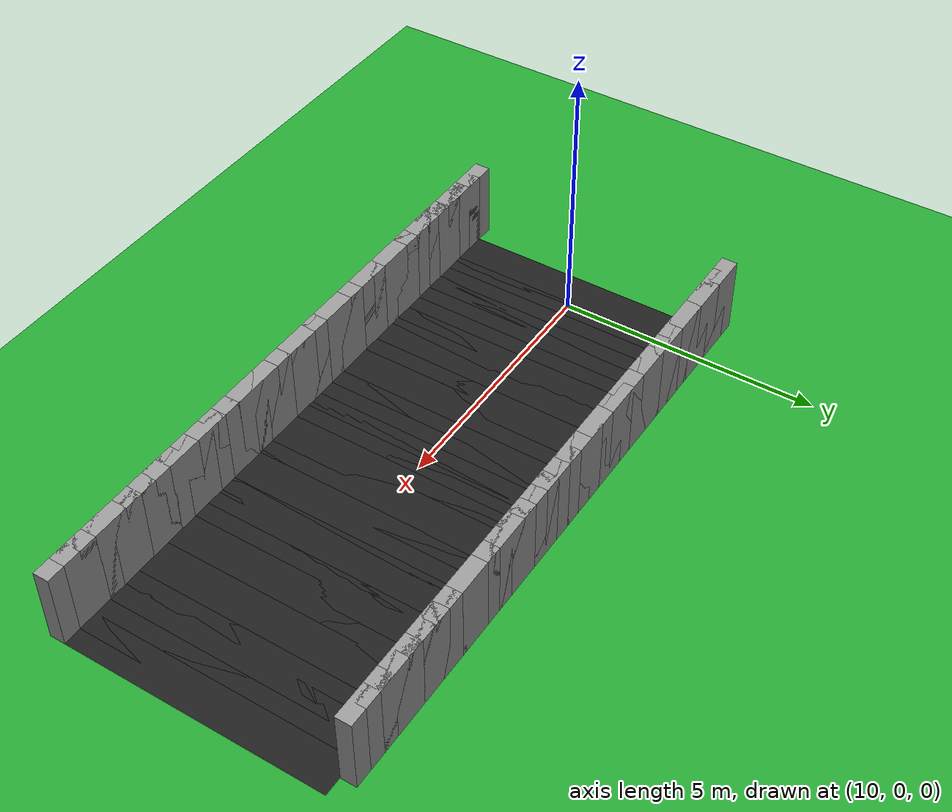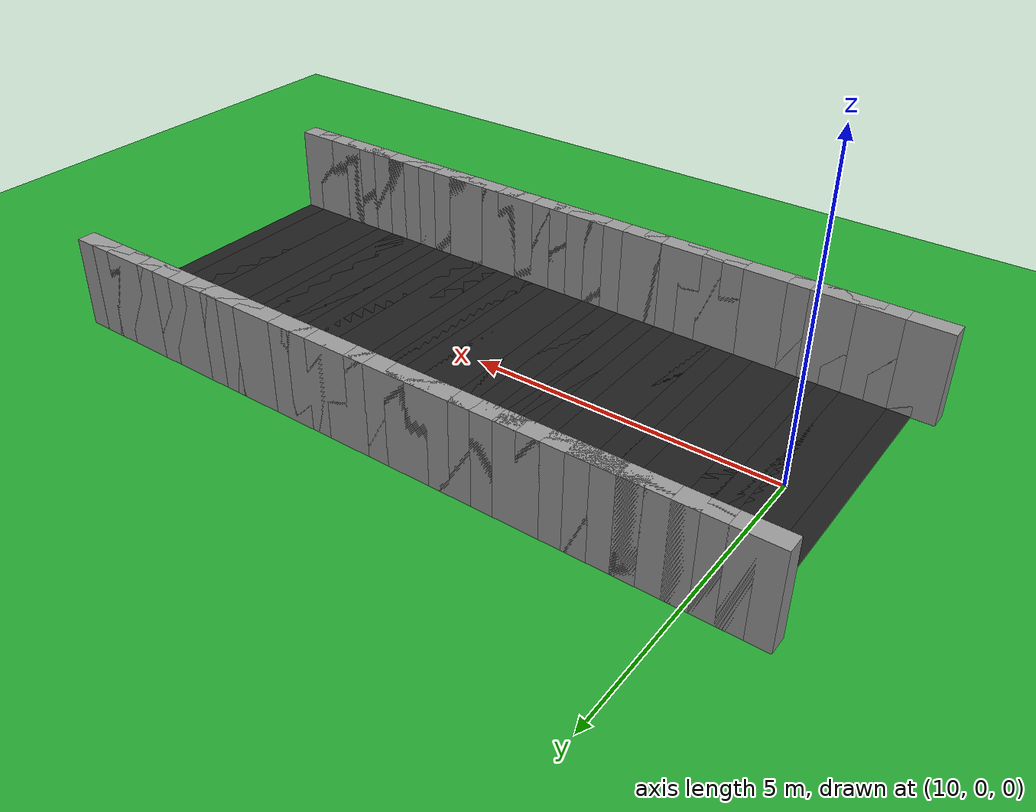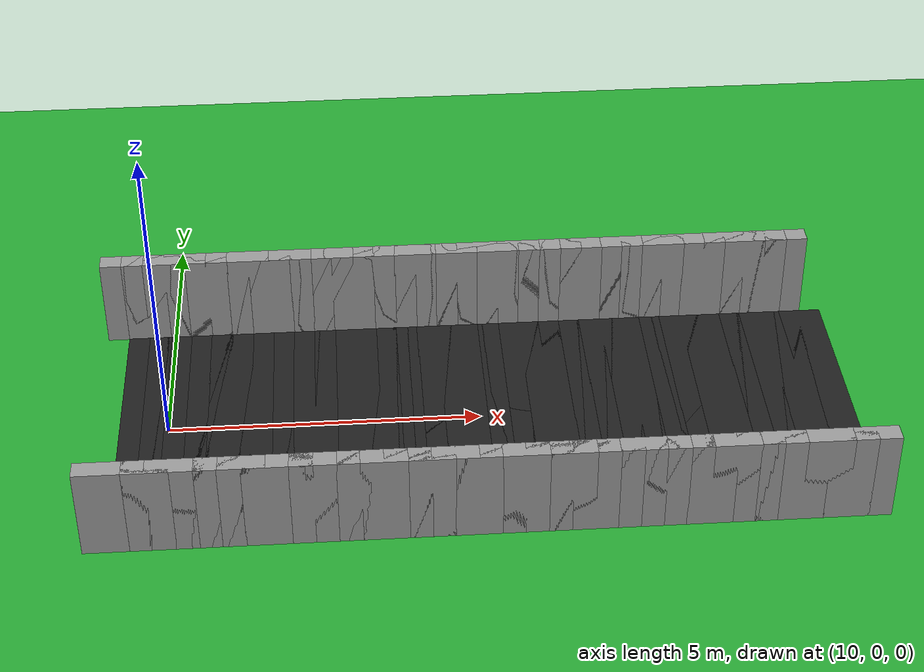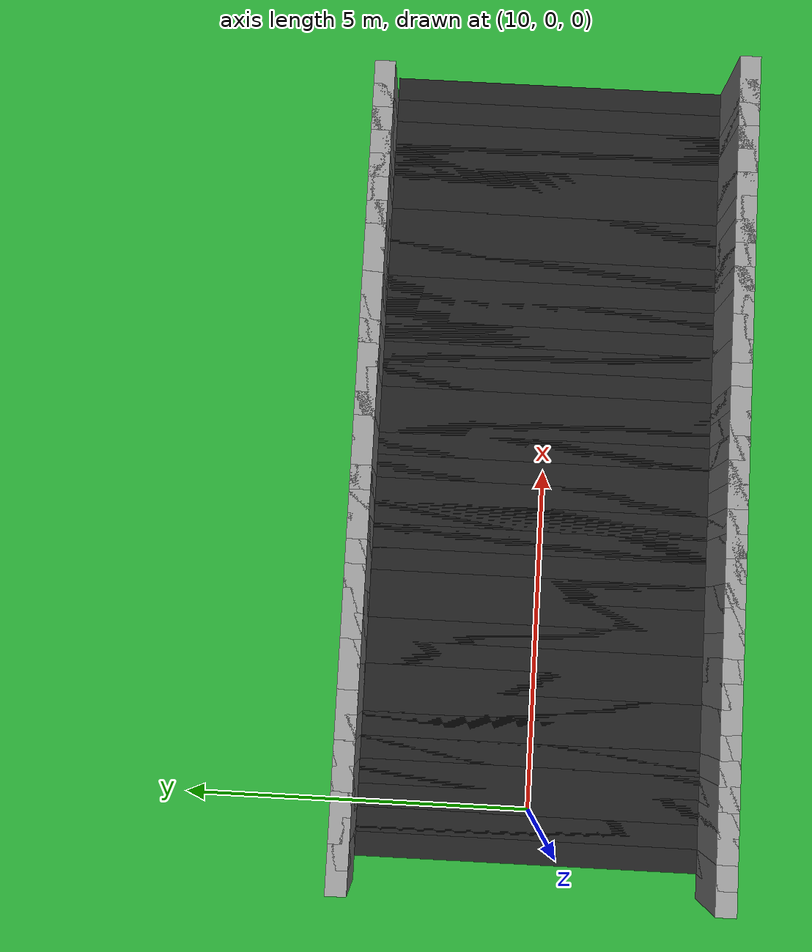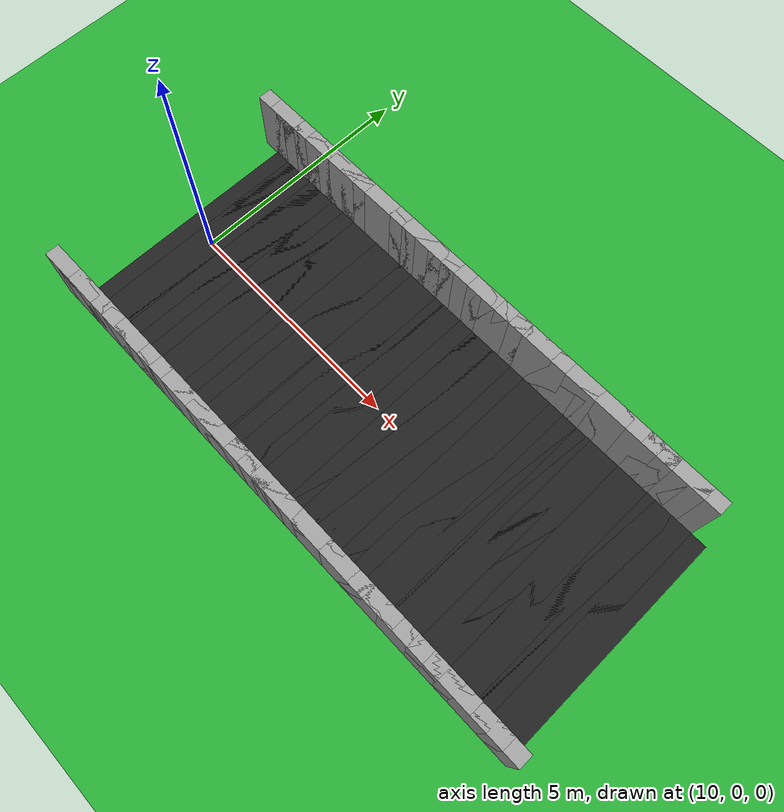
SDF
<sdf version="1.6">
 <world name="loop_stadium">
  <include><uri>model://sun</uri></include>
  <model name="ground_plane">
   <static>true</static>
   <link name="link">
    <collision name="collision">
     <surface><friction><ode><mu>100</mu><mu2>50</mu2></ode></friction></surface>
     <geometry><plane><normal>0 0 1</normal><size>120 120</size></plane></geometry>
    </collision>
    <visual name="visual">
     <geometry><plane><normal>0 0 1</normal><size>120 120</size></plane></geometry>
     <material>
      <script><uri>file://media/materials/scripts/gazebo.material</uri><name>Gazebo/Green</name></script>
     </material>
    </visual>
   </link>
  </model>
  <model name="curbL_26">
   <static>true</static>
   <pose>9.217 2.650 0.750 0 0 0.00000</pose>
   <link name="link">
    <collision name="collision"><geometry><box><size>0.708 0.300 1.500</size></box></geometry></collision>
    <visual name="visual">
     <geometry><box><size>0.708 0.300 1.500</size></box></geometry>
     <material>
      <script><uri>file://media/materials/scripts/gazebo.material</uri><name>Gazebo/Grey</name></script>
     </material>
    </visual>
   </link>
  </model>
  <model name="curbR_26">
   <static>true</static>
   <pose>9.217 -2.650 0.750 0 0 0.00000</pose>
   <link name="link">
    <collision name="collision"><geometry><box><size>0.708 0.300 1.500</size></box></geometry></collision>
    <visual name="visual">
     <geometry><box><size>0.708 0.300 1.500</size></box></geometry>
     <material>
      <script><uri>file://media/materials/scripts/gazebo.material</uri><name>Gazebo/Grey</name></script>
     </material>
    </visual>
   </link>
  </model>
  <model name="asphalt_27">
   <static>true</static>
   <pose>9.565 0.000 0.005 0 0 0.00000</pose>
   <link name="link">
    <visual name="visual">
     <geometry><box><size>0.708 5.000 0.010</size></box></geometry>
     <material>
      <script><uri>file://media/materials/scripts/gazebo.material</uri><name>Gazebo/Black</name></script>
     </material>
    </visual>
   </link>
  </model>
  <model name="curbL_27">
   <static>true</static>
   <pose>9.565 2.650 0.750 0 0 0.00000</pose>
   <link name="link">
    <collision name="collision"><geometry><box><size>0.708 0.300 1.500</size></box></geometry></collision>
    <visual name="visual">
     <geometry><box><size>0.708 0.300 1.500</size></box></geometry>
     <material>
      <script><uri>file://media/materials/scripts/gazebo.material</uri><name>Gazebo/Grey</name></script>
     </material>
    </visual>
   </link>
  </model>
  <model name="curbR_27">
   <static>true</static>
   <pose>9.565 -2.650 0.750 0 0 0.00000</pose>
   <link name="link">
    <collision name="collision"><geometry><box><size>0.708 0.300 1.500</size></box></geometry></collision>
    <visual name="visual">
     <geometry><box><size>0.708 0.300 1.500</size></box></geometry>
     <material>
      <script><uri>file://media/materials/scripts/gazebo.material</uri><name>Gazebo/Grey</name></script>
     </material>
    </visual>
   </link>
  </model>
  <model name="asphalt_28">
   <static>true</static>
   <pose>9.913 0.000 0.005 0 0 0.00000</pose>
   <link name="link">
    <visual name="visual">
     <geometry><box><size>0.708 5.000 0.010</size></box></geometry>
     <material>
      <script><uri>file://media/materials/scripts/gazebo.material</uri><name>Gazebo/Black</name></script>
     </material>
    </visual>
   </link>
  </model>
  <model name="curbL_28">
   <static>true</static>
   <pose>9.913 2.650 0.750 0 0 0.00000</pose>
   <link name="link">
    <collision name="collision"><geometry><box><size>0.708 0.300 1.500</size></box></geometry></collision>
    <visual name="visual">
     <geometry><box><size>0.708 0.300 1.500</size></box></geometry>
     <material>
      <script><uri>file://media/materials/scripts/gazebo.material</uri><name>Gazebo/Grey</name></script>
     </material>
    </visual>
   </link>
  </model>
  <model name="curbR_28">
   <static>true</static>
   <pose>9.913 -2.650 0.750 0 0 0.00000</pose>
   <link name="link">
    <collision name="collision"><geometry><box><size>0.708 0.300 1.500</size></box></geometry></collision>
    <visual name="visual">
     <geometry><box><size>0.708 0.300 1.500</size></box></geometry>
     <material>
      <script><uri>file://media/materials/scripts/gazebo.material</uri><name>Gazebo/Grey</name></script>
     </material>
    </visual>
   </link>
  </model>
  <model name="asphalt_29">
   <static>true</static>
   <pose>10.261 0.000 0.005 0 0 0.00000</pose>
   <link name="link">
    <visual name="visual">
     <geometry><box><size>0.708 5.000 0.010</size></box></geometry>
     <material>
      <script><uri>file://media/materials/scripts/gazebo.material</uri><name>Gazebo/Black</name></script>
     </material>
    </visual>
   </link>
  </model>
  <model name="curbL_29">
   <static>true</static>
   <pose>10.261 2.650 0.750 0 0 0.00000</pose>
   <link name="link">
    <collision name="collision"><geometry><box><size>0.708 0.300 1.500</size></box></geometry></collision>
    <visual name="visual">
     <geometry><box><size>0.708 0.300 1.500</size></box></geometry>
     <material>
      <script><uri>file://media/materials/scripts/gazebo.material</uri><name>Gazebo/Grey</name></script>
     </material>
    </visual>
   </link>
  </model>
  <model name="curbR_29">
   <static>true</static>
   <pose>10.261 -2.650 0.750 0 0 0.00000</pose>
   <link name="link">
    <collision name="collision"><geometry><box><size>0.708 0.300 1.500</size></box></geometry></collision>
    <visual name="visual">
     <geometry><box><size>0.708 0.300 1.500</size></box></geometry>
     <material>
      <script><uri>file://media/materials/scripts/gazebo.material</uri><name>Gazebo/Grey</name></script>
     </material>
    </visual>
   </link>
  </model>
  <model name="asphalt_30">
   <static>true</static>
   <pose>10.609 0.000 0.005 0 0 0.00000</pose>
   <link name="link">
    <visual name="visual">
     <geometry><box><size>0.708 5.000 0.010</size></box></geometry>
     <material>
      <script><uri>file://media/materials/scripts/gazebo.material</uri><name>Gazebo/Black</name></script>
     </material>
    </visual>
   </link>
  </model>
  <model name="curbL_30">
   <static>true</static>
   <pose>10.609 2.650 0.750 0 0 0.00000</pose>
   <link name="link">
    <collision name="collision"><geometry><box><size>0.708 0.300 1.500</size></box></geometry></collision>
    <visual name="visual">
     <geometry><box><size>0.708 0.300 1.500</size></box></geometry>
     <material>
      <script><uri>file://media/materials/scripts/gazebo.material</uri><name>Gazebo/Grey</name></script>
     </material>
    </visual>
   </link>
  </model>
  <model name="curbR_30">
   <static>true</static>
   <pose>10.609 -2.650 0.750 0 0 0.00000</pose>
   <link name="link">
    <collision name="collision"><geometry><box><size>0.708 0.300 1.500</size></box></geometry></collision>
    <visual name="visual">
     <geometry><box><size>0.708 0.300 1.500</size></box></geometry>
     <material>
      <script><uri>file://media/materials/scripts/gazebo.material</uri><name>Gazebo/Grey</name></script>
     </material>
    </visual>
   </link>
  </model>
  <model name="asphalt_31">
   <static>true</static>
   <pose>10.957 0.000 0.005 0 0 0.00000</pose>
   <link name="link">
    <visual name="visual">
     <geometry><box><size>0.708 5.000 0.010</size></box></geometry>
     <material>
      <script><uri>file://media/materials/scripts/gazebo.material</uri><name>Gazebo/Black</name></script>
     </material>
    </visual>
   </link>
  </model>
  <model name="curbL_31">
   <static>true</static>
   <pose>10.957 2.650 0.750 0 0 0.00000</pose>
   <link name="link">
    <collision name="collision"><geometry><box><size>0.708 0.300 1.500</size></box></geometry></collision>
    <visual name="visual">
     <geometry><box><size>0.708 0.300 1.500</size></box></geometry>
     <material>
      <script><uri>file://media/materials/scripts/gazebo.material</uri><name>Gazebo/Grey</name></script>
     </material>
    </visual>
   </link>
  </model>
  <model name="curbR_31">
   <static>true</static>
   <pose>10.957 -2.650 0.750 0 0 0.00000</pose>
   <link name="link">
    <collision name="collision"><geometry><box><size>0.708 0.300 1.500</size></box></geometry></collision>
    <visual name="visual">
     <geometry><box><size>0.708 0.300 1.500</size></box></geometry>
     <material>
      <script><uri>file://media/materials/scripts/gazebo.material</uri><name>Gazebo/Grey</name></script>
     </material>
    </visual>
   </link>
  </model>
  <model name="asphalt_32">
   <static>true</static>
   <pose>11.304 0.000 0.005 0 0 0.00000</pose>
   <link name="link">
    <visual name="visual">
     <geometry><box><size>0.708 5.000 0.010</size></box></geometry>
     <material>
      <script><uri>file://media/materials/scripts/gazebo.material</uri><name>Gazebo/Black</name></script>
     </material>
    </visual>
   </link>
  </model>
  <model name="curbL_32">
   <static>true</static>
   <pose>11.304 2.650 0.750 0 0 0.00000</pose>
   <link name="link">
    <collision name="collision"><geometry><box><size>0.708 0.300 1.500</size></box></geometry></collision>
    <visual name="visual">
     <geometry><box><size>0.708 0.300 1.500</size></box></geometry>
     <material>
      <script><uri>file://media/materials/scripts/gazebo.material</uri><name>Gazebo/Grey</name></script>
     </material>
    </visual>
   </link>
  </model>
  <model name="curbR_32">
   <static>true</static>
   <pose>11.304 -2.650 0.750 0 0 0.00000</pose>
   <link name="link">
    <collision name="collision"><geometry><box><size>0.708 0.300 1.500</size></box></geometry></collision>
    <visual name="visual">
     <geometry><box><size>0.708 0.300 1.500</size></box></geometry>
     <material>
      <script><uri>file://media/materials/scripts/gazebo.material</uri><name>Gazebo/Grey</name></script>
     </material>
    </visual>
   </link>
  </model>
  <model name="asphalt_33">
   <static>true</static>
   <pose>11.652 0.000 0.005 0 0 0.00000</pose>
   <link name="link">
    <visual name="visual">
     <geometry><box><size>0.708 5.000 0.010</size></box></geometry>
     <material>
      <script><uri>file://media/materials/scripts/gazebo.material</uri><name>Gazebo/Black</name></script>
     </material>
    </visual>
   </link>
  </model>
  <model name="curbL_33">
   <static>true</static>
   <pose>11.652 2.650 0.750 0 0 0.00000</pose>
   <link name="link">
    <collision name="collision"><geometry><box><size>0.708 0.300 1.500</size></box></geometry></collision>
    <visual name="visual">
     <geometry><box><size>0.708 0.300 1.500</size></box></geometry>
     <material>
      <script><uri>file://media/materials/scripts/gazebo.material</uri><name>Gazebo/Grey</name></script>
     </material>
    </visual>
   </link>
  </model>
  <model name="curbR_33">
   <static>true</static>
   <pose>11.652 -2.650 0.750 0 0 0.00000</pose>
   <link name="link">
    <collision name="collision"><geometry><box><size>0.708 0.300 1.500</size></box></geometry></collision>
    <visual name="visual">
     <geometry><box><size>0.708 0.300 1.500</size></box></geometry>
     <material>
      <script><uri>file://media/materials/scripts/gazebo.material</uri><name>Gazebo/Grey</name></script>
     </material>
    </visual>
   </link>
  </model>
  <model name="asphalt_34">
   <static>true</static>
   <pose>12.000 0.000 0.005 0 0 0.00000</pose>
   <link name="link">
    <visual name="visual">
     <geometry><box><size>0.708 5.000 0.010</size></box></geometry>
     <material>
      <script><uri>file://media/materials/scripts/gazebo.material</uri><name>Gazebo/Black</name></script>
     </material>
    </visual>
   </link>
  </model>
  <model name="curbL_34">
   <static>true</static>
   <pose>12.000 2.650 0.750 0 0 0.00000</pose>
   <link name="link">
    <collision name="collision"><geometry><box><size>0.708 0.300 1.500</size></box></geometry></collision>
    <visual name="visual">
     <geometry><box><size>0.708 0.300 1.500</size></box></geometry>
     <material>
      <script><uri>file://media/materials/scripts/gazebo.material</uri><name>Gazebo/Grey</name></script>
     </material>
    </visual>
   </link>
  </model>
  <model name="curbR_34">
   <static>true</static>
   <pose>12.000 -2.650 0.750 0 0 0.00000</pose>
   <link name="link">
    <collision name="collision"><geometry><box><size>0.708 0.300 1.500</size></box></geometry></collision>
    <visual name="visual">
     <geometry><box><size>0.708 0.300 1.500</size></box></geometry>
     <material>
      <script><uri>file://media/materials/scripts/gazebo.material</uri><name>Gazebo/Grey</name></script>
     </material>
    </visual>
   </link>
  </model>
  <model name="asphalt_35">
   <static>true</static>
   <pose>12.348 0.000 0.005 0 0 0.00000</pose>
   <link name="link">
    <visual name="visual">
     <geometry><box><size>0.708 5.000 0.010</size></box></geometry>
     <material>
      <script><uri>file://media/materials/scripts/gazebo.material</uri><name>Gazebo/Black</name></script>
     </material>
    </visual>
   </link>
  </model>
  <model name="curbL_35">
   <static>true</static>
   <pose>12.348 2.650 0.750 0 0 0.00000</pose>
   <link name="link">
    <collision name="collision"><geometry><box><size>0.708 0.300 1.500</size></box></geometry></collision>
    <visual name="visual">
     <geometry><box><size>0.708 0.300 1.500</size></box></geometry>
     <material>
      <script><uri>file://media/materials/scripts/gazebo.material</uri><name>Gazebo/Grey</name></script>
     </material>
    </visual>
   </link>
  </model>
  <model name="curbR_35">
   <static>true</static>
   <pose>12.348 -2.650 0.750 0 0 0.00000</pose>
   <link name="link">
    <collision name="collision"><geometry><box><size>0.708 0.300 1.500</size></box></geometry></collision>
    <visual name="visual">
     <geometry><box><size>0.708 0.300 1.500</size></box></geometry>
     <material>
      <script><uri>file://media/materials/scripts/gazebo.material</uri><name>Gazebo/Grey</name></script>
     </material>
    </visual>
   </link>
  </model>
  <model name="asphalt_36">
   <static>true</static>
   <pose>12.696 0.000 0.005 0 0 0.00000</pose>
   <link name="link">
    <visual name="visual">
     <geometry><box><size>0.708 5.000 0.010</size></box></geometry>
     <material>
      <script><uri>file://media/materials/scripts/gazebo.material</uri><name>Gazebo/Black</name></script>
     </material>
    </visual>
   </link>
  </model>
  <model name="curbL_36">
   <static>true</static>
   <pose>12.696 2.650 0.750 0 0 0.00000</pose>
   <link name="link">
    <collision name="collision"><geometry><box><size>0.708 0.300 1.500</size></box></geometry></collision>
    <visual name="visual">
     <geometry><box><size>0.708 0.300 1.500</size></box></geometry>
     <material>
      <script><uri>file://media/materials/scripts/gazebo.material</uri><name>Gazebo/Grey</name></script>
     </material>
    </visual>
   </link>
  </model>
  <model name="curbR_36">
   <static>true</static>
   <pose>12.696 -2.650 0.750 0 0 0.00000</pose>
   <link name="link">
    <collision name="collision"><geometry><box><size>0.708 0.300 1.500</size></box></geometry></collision>
    <visual name="visual">
     <geometry><box><size>0.708 0.300 1.500</size></box></geometry>
     <material>
      <script><uri>file://media/materials/scripts/gazebo.material</uri><name>Gazebo/Grey</name></script>
     </material>
    </visual>
   </link>
  </model>
  <model name="asphalt_37">
   <static>true</static>
   <pose>13.043 0.000 0.005 0 0 0.00000</pose>
   <link name="link">
    <visual name="visual">
     <geometry><box><size>0.708 5.000 0.010</size></box></geometry>
     <material>
      <script><uri>file://media/materials/scripts/gazebo.material</uri><name>Gazebo/Black</name></script>
     </material>
    </visual>
   </link>
  </model>
  <model name="curbL_37">
   <static>true</static>
   <pose>13.043 2.650 0.750 0 0 0.00000</pose>
   <link name="link">
    <collision name="collision"><geometry><box><size>0.708 0.300 1.500</size></box></geometry></collision>
    <visual name="visual">
     <geometry><box><size>0.708 0.300 1.500</size></box></geometry>
     <material>
      <script><uri>file://media/materials/scripts/gazebo.material</uri><name>Gazebo/Grey</name></script>
     </material>
    </visual>
   </link>
  </model>
  <model name="curbR_37">
   <static>true</static>
   <pose>13.043 -2.650 0.750 0 0 0.00000</pose>
   <link name="link">
    <collision name="collision"><geometry><box><size>0.708 0.300 1.500</size></box></geometry></collision>
    <visual name="visual">
     <geometry><box><size>0.708 0.300 1.500</size></box></geometry>
     <material>
      <script><uri>file://media/materials/scripts/gazebo.material</uri><name>Gazebo/Grey</name></script>
     </material>
    </visual>
   </link>
  </model>
  <model name="asphalt_38">
   <static>true</static>
   <pose>13.391 0.000 0.005 0 0 0.00000</pose>
   <link name="link">
    <visual name="visual">
     <geometry><box><size>0.708 5.000 0.010</size></box></geometry>
     <material>
      <script><uri>file://media/materials/scripts/gazebo.material</uri><name>Gazebo/Black</name></script>
     </material>
    </visual>
   </link>
  </model>
  <model name="curbL_38">
   <static>true</static>
   <pose>13.391 2.650 0.750 0 0 0.00000</pose>
   <link name="link">
    <collision name="collision"><geometry><box><size>0.708 0.300 1.500</size></box></geometry></collision>
    <visual name="visual">
     <geometry><box><size>0.708 0.300 1.500</size></box></geometry>
     <material>
      <script><uri>file://media/materials/scripts/gazebo.material</uri><name>Gazebo/Grey</name></script>
     </material>
    </visual>
   </link>
  </model>
  <model name="curbR_38">
   <static>true</static>
   <pose>13.391 -2.650 0.750 0 0 0.00000</pose>
   <link name="link">
    <collision name="collision"><geometry><box><size>0.708 0.300 1.500</size></box></geometry></collision>
    <visual name="visual">
     <geometry><box><size>0.708 0.300 1.500</size></box></geometry>
     <material>
      <script><uri>file://media/materials/scripts/gazebo.material</uri><name>Gazebo/Grey</name></script>
     </material>
    </visual>
   </link>
  </model>
  <model name="asphalt_39">
   <static>true</static>
   <pose>13.739 0.000 0.005 0 0 0.00000</pose>
   <link name="link">
    <visual name="visual">
     <geometry><box><size>0.708 5.000 0.010</size></box></geometry>
     <material>
      <script><uri>file://media/materials/scripts/gazebo.material</uri><name>Gazebo/Black</name></script>
     </material>
    </visual>
   </link>
  </model>
  <model name="curbL_39">
   <static>true</static>
   <pose>13.739 2.650 0.750 0 0 0.00000</pose>
   <link name="link">
    <collision name="collision"><geometry><box><size>0.708 0.300 1.500</size></box></geometry></collision>
    <visual name="visual">
     <geometry><box><size>0.708 0.300 1.500</size></box></geometry>
     <material>
      <script><uri>file://media/materials/scripts/gazebo.material</uri><name>Gazebo/Grey</name></script>
     </material>
    </visual>
   </link>
  </model>
  <model name="curbR_39">
   <static>true</static>
   <pose>13.739 -2.650 0.750 0 0 0.00000</pose>
   <link name="link">
    <collision name="collision"><geometry><box><size>0.708 0.300 1.500</size></box></geometry></collision>
    <visual name="visual">
     <geometry><box><size>0.708 0.300 1.500</size></box></geometry>
     <material>
      <script><uri>file://media/materials/scripts/gazebo.material</uri><name>Gazebo/Grey</name></script>
     </material>
    </visual>
   </link>
  </model>
  <model name="asphalt_40">
   <static>true</static>
   <pose>14.087 0.000 0.005 0 0 0.00000</pose>
   <link name="link">
    <visual name="visual">
     <geometry><box><size>0.708 5.000 0.010</size></box></geometry>
     <material>
      <script><uri>file://media/materials/scripts/gazebo.material</uri><name>Gazebo/Black</name></script>
     </material>
    </visual>
   </link>
  </model>
  <model name="curbL_40">
   <static>true</static>
   <pose>14.087 2.650 0.750 0 0 0.00000</pose>
   <link name="link">
    <collision name="collision"><geometry><box><size>0.708 0.300 1.500</size></box></geometry></collision>
    <visual name="visual">
     <geometry><box><size>0.708 0.300 1.500</size></box></geometry>
     <material>
      <script><uri>file://media/materials/scripts/gazebo.material</uri><name>Gazebo/Grey</name></script>
     </material>
    </visual>
   </link>
  </model>
  <model name="curbR_40">
   <static>true</static>
   <pose>14.087 -2.650 0.750 0 0 0.00000</pose>
   <link name="link">
    <collision name="collision"><geometry><box><size>0.708 0.300 1.500</size></box></geometry></collision>
    <visual name="visual">
     <geometry><box><size>0.708 0.300 1.500</size></box></geometry>
     <material>
      <script><uri>file://media/materials/scripts/gazebo.material</uri><name>Gazebo/Grey</name></script>
     </material>
    </visual>
   </link>
  </model>
  <model name="asphalt_41">
   <static>true</static>
   <pose>14.435 0.000 0.005 0 0 0.00000</pose>
   <link name="link">
    <visual name="visual">
     <geometry><box><size>0.708 5.000 0.010</size></box></geometry>
     <material>
      <script><uri>file://media/materials/scripts/gazebo.material</uri><name>Gazebo/Black</name></script>
     </material>
    </visual>
   </link>
  </model>
  <model name="curbL_41">
   <static>true</static>
   <pose>14.435 2.650 0.750 0 0 0.00000</pose>
   <link name="link">
    <collision name="collision"><geometry><box><size>0.708 0.300 1.500</size></box></geometry></collision>
    <visual name="visual">
     <geometry><box><size>0.708 0.300 1.500</size></box></geometry>
     <material>
      <script><uri>file://media/materials/scripts/gazebo.material</uri><name>Gazebo/Grey</name></script>
     </material>
    </visual>
   </link>
  </model>
  <model name="curbR_41">
   <static>true</static>
   <pose>14.435 -2.650 0.750 0 0 0.00000</pose>
   <link name="link">
    <collision name="collision"><geometry><box><size>0.708 0.300 1.500</size></box></geometry></collision>
    <visual name="visual">
     <geometry><box><size>0.708 0.300 1.500</size></box></geometry>
     <material>
      <script><uri>file://media/materials/scripts/gazebo.material</uri><name>Gazebo/Grey</name></script>
     </material>
    </visual>
   </link>
  </model>
  <model name="asphalt_42">
   <static>true</static>
   <pose>14.783 0.000 0.005 0 0 0.00000</pose>
   <link name="link">
    <visual name="visual">
     <geometry><box><size>0.708 5.000 0.010</size></box></geometry>
     <material>
      <script><uri>file://media/materials/scripts/gazebo.material</uri><name>Gazebo/Black</name></script>
     </material>
    </visual>
   </link>
  </model>
  <model name="curbL_42">
   <static>true</static>
   <pose>14.783 2.650 0.750 0 0 0.00000</pose>
   <link name="link">
    <collision name="collision"><geometry><box><size>0.708 0.300 1.500</size></box></geometry></collision>
    <visual name="visual">
     <geometry><box><size>0.708 0.300 1.500</size></box></geometry>
     <material>
      <script><uri>file://media/materials/scripts/gazebo.material</uri><name>Gazebo/Grey</name></script>
     </material>
    </visual>
   </link>
  </model>
  <model name="curbR_42">
   <static>true</static>
   <pose>14.783 -2.650 0.750 0 0 0.00000</pose>
   <link name="link">
    <collision name="collision"><geometry><box><size>0.708 0.300 1.500</size></box></geometry></collision>
    <visual name="visual">
     <geometry><box><size>0.708 0.300 1.500</size></box></geometry>
     <material>
      <script><uri>file://media/materials/scripts/gazebo.material</uri><name>Gazebo/Grey</name></script>
     </material>
    </visual>
   </link>
  </model>
  <model name="asphalt_43">
   <static>true</static>
   <pose>15.130 0.000 0.005 0 0 0.00000</pose>
   <link name="link">
    <visual name="visual">
     <geometry><box><size>0.708 5.000 0.010</size></box></geometry>
     <material>
      <script><uri>file://media/materials/scripts/gazebo.material</uri><name>Gazebo/Black</name></script>
     </material>
    </visual>
   </link>
  </model>
  <model name="curbL_43">
   <static>true</static>
   <pose>15.130 2.650 0.750 0 0 0.00000</pose>
   <link name="link">
    <collision name="collision"><geometry><box><size>0.708 0.300 1.500</size></box></geometry></collision>
    <visual name="visual">
     <geometry><box><size>0.708 0.300 1.500</size></box></geometry>
     <material>
      <script><uri>file://media/materials/scripts/gazebo.material</uri><name>Gazebo/Grey</name></script>
     </material>
    </visual>
   </link>
  </model>
  <model name="curbR_43">
   <static>true</static>
   <pose>15.130 -2.650 0.750 0 0 0.00000</pose>
   <link name="link">
    <collision name="collision"><geometry><box><size>0.708 0.300 1.500</size></box></geometry></collision>
    <visual name="visual">
     <geometry><box><size>0.708 0.300 1.500</size></box></geometry>
     <material>
      <script><uri>file://media/materials/scripts/gazebo.material</uri><name>Gazebo/Grey</name></script>
     </material>
    </visual>
   </link>
  </model>
  <model name="asphalt_44">
   <static>true</static>
   <pose>15.478 0.000 0.005 0 0 0.00000</pose>
   <link name="link">
    <visual name="visual">
     <geometry><box><size>0.708 5.000 0.010</size></box></geometry>
     <material>
      <script><uri>file://media/materials/scripts/gazebo.material</uri><name>Gazebo/Black</name></script>
     </material>
    </visual>
   </link>
  </model>
  <model name="curbL_44">
   <static>true</static>
   <pose>15.478 2.650 0.750 0 0 0.00000</pose>
   <link name="link">
    <collision name="collision"><geometry><box><size>0.708 0.300 1.500</size></box></geometry></collision>
    <visual name="visual">
     <geometry><box><size>0.708 0.300 1.500</size></box></geometry>
     <material>
      <script><uri>file://media/materials/scripts/gazebo.material</uri><name>Gazebo/Grey</name></script>
     </material>
    </visual>
   </link>
  </model>
  <model name="curbR_44">
   <static>true</static>
   <pose>15.478 -2.650 0.750 0 0 0.00000</pose>
   <link name="link">
    <collision name="collision"><geometry><box><size>0.708 0.300 1.500</size></box></geometry></collision>
    <visual name="visual">
     <geometry><box><size>0.708 0.300 1.500</size></box></geometry>
     <material>
      <script><uri>file://media/materials/scripts/gazebo.material</uri><name>Gazebo/Grey</name></script>
     </material>
    </visual>
   </link>
  </model>
  <model name="asphalt_45">
   <static>true</static>
   <pose>15.826 0.000 0.005 0 0 0.00000</pose>
   <link name="link">
    <visual name="visual">
     <geometry><box><size>0.708 5.000 0.010</size></box></geometry>
     <material>
      <script><uri>file://media/materials/scripts/gazebo.material</uri><name>Gazebo/Black</name></script>
     </material>
    </visual>
   </link>
  </model>
  <model name="curbL_45">
   <static>true</static>
   <pose>15.826 2.650 0.750 0 0 0.00000</pose>
   <link name="link">
    <collision name="collision"><geometry><box><size>0.708 0.300 1.500</size></box></geometry></collision>
    <visual name="visual">
     <geometry><box><size>0.708 0.300 1.500</size></box></geometry>
     <material>
      <script><uri>file://media/materials/scripts/gazebo.material</uri><name>Gazebo/Grey</name></script>
     </material>
    </visual>
   </link>
  </model>
  <model name="curbR_45">
   <static>true</static>
   <pose>15.826 -2.650 0.750 0 0 0.00000</pose>
   <link name="link">
    <collision name="collision"><geometry><box><size>0.708 0.300 1.500</size></box></geometry></collision>
    <visual name="visual">
     <geometry><box><size>0.708 0.300 1.500</size></box></geometry>
     <material>
      <script><uri>file://media/materials/scripts/gazebo.material</uri><name>Gazebo/Grey</name></script>
     </material>
    </visual>
   </link>
  </model>
  <model name="asphalt_46">
   <static>true</static>
   <pose>16.174 0.000 0.005 0 0 0.00000</pose>
   <link name="link">
    <visual name="visual">
     <geometry><box><size>0.708 5.000 0.010</size></box></geometry>
     <material>
      <script><uri>file://media/materials/scripts/gazebo.material</uri><name>Gazebo/Black</name></script>
     </material>
    </visual>
   </link>
  </model>
  <model name="curbL_46">
   <static>true</static>
   <pose>16.174 2.650 0.750 0 0 0.00000</pose>
   <link name="link">
    <collision name="collision"><geometry><box><size>0.708 0.300 1.500</size></box></geometry></collision>
    <visual name="visual">
     <geometry><box><size>0.708 0.300 1.500</size></box></geometry>
     <material>
      <script><uri>file://media/materials/scripts/gazebo.material</uri><name>Gazebo/Grey</name></script>
     </material>
    </visual>
   </link>
  </model>
  <model name="curbR_46">
   <static>true</static>
   <pose>16.174 -2.650 0.750 0 0 0.00000</pose>
   <link name="link">
    <collision name="collision"><geometry><box><size>0.708 0.300 1.500</size></box></geometry></collision>
    <visual name="visual">
     <geometry><box><size>0.708 0.300 1.500</size></box></geometry>
     <material>
      <script><uri>file://media/materials/scripts/gazebo.material</uri><name>Gazebo/Grey</name></script>
     </material>
    </visual>
   </link>
  </model>
  <model name="asphalt_47">
   <static>true</static>
   <pose>16.522 0.000 0.005 0 0 0.00000</pose>
   <link name="link">
    <visual name="visual">
     <geometry><box><size>0.708 5.000 0.010</size></box></geometry>
     <material>
      <script><uri>file://media/materials/scripts/gazebo.material</uri><name>Gazebo/Black</name></script>
     </material>
    </visual>
   </link>
  </model>
  <model name="curbL_47">
   <static>true</static>
   <pose>16.522 2.650 0.750 0 0 0.00000</pose>
   <link name="link">
    <collision name="collision"><geometry><box><size>0.708 0.300 1.500</size></box></geometry></collision>
    <visual name="visual">
     <geometry><box><size>0.708 0.300 1.500</size></box></geometry>
     <material>
      <script><uri>file://media/materials/scripts/gazebo.material</uri><name>Gazebo/Grey</name></script>
     </material>
    </visual>
   </link>
  </model>
  <model name="curbR_47">
   <static>true</static>
   <pose>16.522 -2.650 0.750 0 0 0.00000</pose>
   <link name="link">
    <collision name="collision"><geometry><box><size>0.708 0.300 1.500</size></box></geometry></collision>
    <visual name="visual">
     <geometry><box><size>0.708 0.300 1.500</size></box></geometry>
     <material>
      <script><uri>file://media/materials/scripts/gazebo.material</uri><name>Gazebo/Grey</name></script>
     </material>
    </visual>
   </link>
  </model>
  <model name="asphalt_48">
   <static>true</static>
   <pose>16.870 0.000 0.005 0 0 0.00000</pose>
   <link name="link">
    <visual name="visual">
     <geometry><box><size>0.708 5.000 0.010</size></box></geometry>
     <material>
      <script><uri>file://media/materials/scripts/gazebo.material</uri><name>Gazebo/Black</name></script>
     </material>
    </visual>
   </link>
  </model>
  <model name="curbL_48">
   <static>true</static>
   <pose>16.870 2.650 0.750 0 0 0.00000</pose>
   <link name="link">
    <collision name="collision"><geometry><box><size>0.708 0.300 1.500</size></box></geometry></collision>
    <visual name="visual">
     <geometry><box><size>0.708 0.300 1.500</size></box></geometry>
     <material>
      <script><uri>file://media/materials/scripts/gazebo.material</uri><name>Gazebo/Grey</name></script>
     </material>
    </visual>
   </link>
  </model>
  <model name="curbR_48">
   <static>true</static>
   <pose>16.870 -2.650 0.750 0 0 0.00000</pose>
   <link name="link">
    <collision name="collision"><geometry><box><size>0.708 0.300 1.500</size></box></geometry></collision>
    <visual name="visual">
     <geometry><box><size>0.708 0.300 1.500</size></box></geometry>
     <material>
      <script><uri>file://media/materials/scripts/gazebo.material</uri><name>Gazebo/Grey</name></script>
     </material>
    </visual>
   </link>
  </model>
  <model name="asphalt_49">
   <static>true</static>
   <pose>17.217 0.000 0.005 0 0 0.00000</pose>
   <link name="link">
    <visual name="visual">
     <geometry><box><size>0.708 5.000 0.010</size></box></geometry>
     <material>
      <script><uri>file://media/materials/scripts/gazebo.material</uri><name>Gazebo/Black</name></script>
     </material>
    </visual>
   </link>
  </model>
  <model name="curbL_49">
   <static>true</static>
   <pose>17.217 2.650 0.750 0 0 0.00000</pose>
   <link name="link">
    <collision name="collision"><geometry><box><size>0.708 0.300 1.500</size></box></geometry></collision>
    <visual name="visual">
     <geometry><box><size>0.708 0.300 1.500</size></box></geometry>
     <material>
      <script><uri>file://media/materials/scripts/gazebo.material</uri><name>Gazebo/Grey</name></script>
     </material>
    </visual>
   </link>
  </model>
  <model name="curbR_49">
   <static>true</static>
   <pose>17.217 -2.650 0.750 0 0 0.00000</pose>
   <link name="link">
    <collision name="collision"><geometry><box><size>0.708 0.300 1.500</size></box></geometry></collision>
    <visual name="visual">
     <geometry><box><size>0.708 0.300 1.500</size></box></geometry>
     <material>
      <script><uri>file://media/materials/scripts/gazebo.material</uri><name>Gazebo/Grey</name></script>
     </material>
    </visual>
   </link>
  </model>
  <model name="asphalt_50">
   <static>true</static>
   <pose>17.565 0.000 0.005 0 0 0.00000</pose>
   <link name="link">
    <visual name="visual">
     <geometry><box><size>0.708 5.000 0.010</size></box></geometry>
     <material>
      <script><uri>file://media/materials/scripts/gazebo.material</uri><name>Gazebo/Black</name></script>
     </material>
    </visual>
   </link>
  </model>
  <model name="curbL_50">
   <static>true</static>
   <pose>17.565 2.650 0.750 0 0 0.00000</pose>
   <link name="link">
    <collision name="collision"><geometry><box><size>0.708 0.300 1.500</size></box></geometry></collision>
    <visual name="visual">
     <geometry><box><size>0.708 0.300 1.500</size></box></geometry>
     <material>
      <script><uri>file://media/materials/scripts/gazebo.material</uri><name>Gazebo/Grey</name></script>
     </material>
    </visual>
   </link>
  </model>
  <model name="curbR_50">
   <static>true</static>
   <pose>17.565 -2.650 0.750 0 0 0.00000</pose>
   <link name="link">
    <collision name="collision"><geometry><box><size>0.708 0.300 1.500</size></box></geometry></collision>
    <visual name="visual">
     <geometry><box><size>0.708 0.300 1.500</size></box></geometry>
     <material>
      <script><uri>file://media/materials/scripts/gazebo.material</uri><name>Gazebo/Grey</name></script>
     </material>
    </visual>
   </link>
  </model>
  <model name="asphalt_51">
   <static>true</static>
   <pose>17.913 0.000 0.005 0 0 0.00000</pose>
   <link name="link">
    <visual name="visual">
     <geometry><box><size>0.708 5.000 0.010</size></box></geometry>
     <material>
      <script><uri>file://media/materials/scripts/gazebo.material</uri><name>Gazebo/Black</name></script>
     </material>
    </visual>
   </link>
  </model>
  <model name="curbL_51">
   <static>true</static>
   <pose>17.913 2.650 0.750 0 0 0.00000</pose>
   <link name="link">
    <collision name="collision"><geometry><box><size>0.708 0.300 1.500</size></box></geometry></collision>
    <visual name="visual">
     <geometry><box><size>0.708 0.300 1.500</size></box></geometry>
     <material>
      <script><uri>file://media/materials/scripts/gazebo.material</uri><name>Gazebo/Grey</name></script>
     </material>
    </visual>
   </link>
  </model>
  <model name="curbR_51">
   <static>true</static>
   <pose>17.913 -2.650 0.750 0 0 0.00000</pose>
   <link name="link">
    <collision name="collision"><geometry><box><size>0.708 0.300 1.500</size></box></geometry></collision>
    <visual name="visual">
     <geometry><box><size>0.708 0.300 1.500</size></box></geometry>
     <material>
      <script><uri>file://media/materials/scripts/gazebo.material</uri><name>Gazebo/Grey</name></script>
     </material>
    </visual>
   </link>
  </model>
  <model name="asphalt_52">
   <static>true</static>
   <pose>18.261 0.000 0.005 0 0 0.00000</pose>
   <link name="link">
    <visual name="visual">
     <geometry><box><size>0.708 5.000 0.010</size></box></geometry>
     <material>
      <script><uri>file://media/materials/scripts/gazebo.material</uri><name>Gazebo/Black</name></script>
     </material>
    </visual>
   </link>
  </model>
  <model name="curbL_52">
   <static>true</static>
   <pose>18.261 2.650 0.750 0 0 0.00000</pose>
   <link name="link">
    <collision name="collision"><geometry><box><size>0.708 0.300 1.500</size></box></geometry></collision>
    <visual name="visual">
     <geometry><box><size>0.708 0.300 1.500</size></box></geometry>
     <material>
      <script><uri>file://media/materials/scripts/gazebo.material</uri><name>Gazebo/Grey</name></script>
     </material>
    </visual>
   </link>
  </model>
  <model name="curbR_52">
   <static>true</static>
   <pose>18.261 -2.650 0.750 0 0 0.00000</pose>
   <link name="link">
    <collision name="collision"><geometry><box><size>0.708 0.300 1.500</size></box></geometry></collision>
    <visual name="visual">
     <geometry><box><size>0.708 0.300 1.500</size></box></geometry>
     <material>
      <script><uri>file://media/materials/scripts/gazebo.material</uri><name>Gazebo/Grey</name></script>
     </material>
    </visual>
   </link>
  </model>
  <model name="asphalt_53">
   <static>true</static>
   <pose>18.609 0.000 0.005 0 0 0.00000</pose>
   <link name="link">
    <visual name="visual">
     <geometry><box><size>0.708 5.000 0.010</size></box></geometry>
     <material>
      <script><uri>file://media/materials/scripts/gazebo.material</uri><name>Gazebo/Black</name></script>
     </material>
    </visual>
   </link>
  </model>
  <model name="curbL_53">
   <static>true</static>
   <pose>18.609 2.650 0.750 0 0 0.00000</pose>
   <link name="link">
    <collision name="collision"><geometry><box><size>0.708 0.300 1.500</size></box></geometry></collision>
    <visual name="visual">
     <geometry><box><size>0.708 0.300 1.500</size></box></geometry>
     <material>
      <script><uri>file://media/materials/scripts/gazebo.material</uri><name>Gazebo/Grey</name></script>
     </material>
    </visual>
   </link>
  </model>
  <model name="curbR_53">
   <static>true</static>
   <pose>18.609 -2.650 0.750 0 0 0.00000</pose>
   <link name="link">
    <collision name="collision"><geometry><box><size>0.708 0.300 1.500</size></box></geometry></collision>
    <visual name="visual">
     <geometry><box><size>0.708 0.300 1.500</size></box></geometry>
     <material>
      <script><uri>file://media/materials/scripts/gazebo.material</uri><name>Gazebo/Grey</name></script>
     </material>
    </visual>
   </link>
  </model>
  <model name="asphalt_54">
   <static>true</static>
   <pose>18.957 0.000 0.005 0 0 0.00000</pose>
   <link name="link">
    <visual name="visual">
     <geometry><box><size>0.708 5.000 0.010</size></box></geometry>
     <material>
      <script><uri>file://media/materials/scripts/gazebo.material</uri><name>Gazebo/Black</name></script>
     </material>
    </visual>
   </link>
  </model>
  <model name="curbL_54">
   <static>true</static>
   <pose>18.957 2.650 0.750 0 0 0.00000</pose>
   <link name="link">
    <collision name="collision"><geometry><box><size>0.708 0.300 1.500</size></box></geometry></collision>
    <visual name="visual">
     <geometry><box><size>0.708 0.300 1.500</size></box></geometry>
     <material>
      <script><uri>file://media/materials/scripts/gazebo.material</uri><name>Gazebo/Grey</name></script>
     </material>
    </visual>
   </link>
  </model>
  <model name="curbR_54">
   <static>true</static>
   <pose>18.957 -2.650 0.750 0 0 0.00000</pose>
   <link name="link">
    <collision name="collision"><geometry><box><size>0.708 0.300 1.500</size></box></geometry></collision>
    <visual name="visual">
     <geometry><box><size>0.708 0.300 1.500</size></box></geometry>
     <material>
      <script><uri>file://media/materials/scripts/gazebo.material</uri><name>Gazebo/Grey</name></script>
     </material>
    </visual>
   </link>
  </model>
  <model name="asphalt_55">
   <static>true</static>
   <pose>19.304 0.000 0.005 0 0 0.00000</pose>
   <link name="link">
    <visual name="visual">
     <geometry><box><size>0.708 5.000 0.010</size></box></geometry>
     <material>
      <script><uri>file://media/materials/scripts/gazebo.material</uri><name>Gazebo/Black</name></script>
     </material>
    </visual>
   </link>
  </model>
  <model name="curbL_55">
   <static>true</static>
   <pose>19.304 2.650 0.750 0 0 0.00000</pose>
   <link name="link">
    <collision name="collision"><geometry><box><size>0.708 0.300 1.500</size></box></geometry></collision>
    <visual name="visual">
     <geometry><box><size>0.708 0.300 1.500</size></box></geometry>
     <material>
      <script><uri>file://media/materials/scripts/gazebo.material</uri><name>Gazebo/Grey</name></script>
     </material>
    </visual>
   </link>
  </model>
  <model name="curbR_55">
   <static>true</static>
   <pose>19.304 -2.650 0.750 0 0 0.00000</pose>
   <link name="link">
    <collision name="collision"><geometry><box><size>0.708 0.300 1.500</size></box></geometry></collision>
    <visual name="visual">
     <geometry><box><size>0.708 0.300 1.500</size></box></geometry>
     <material>
      <script><uri>file://media/materials/scripts/gazebo.material</uri><name>Gazebo/Grey</name></script>
     </material>
    </visual>
   </link>
  </model>
  <model name="asphalt_56">
   <static>true</static>
   <pose>19.652 0.000 0.005 0 0 0.00000</pose>
   <link name="link">
    <visual name="visual">
     <geometry><box><size>0.708 5.000 0.010</size></box></geometry>
     <material>
      <script><uri>file://media/materials/scripts/gazebo.material</uri><name>Gazebo/Black</name></script>
     </material>
    </visual>
   </link>
  </model>
  <model name="curbL_56">
   <static>true</static>
   <pose>19.652 2.650 0.750 0 0 0.00000</pose>
   <link name="link">
    <collision name="collision"><geometry><box><size>0.708 0.300 1.500</size></box></geometry></collision>
    <visual name="visual">
     <geometry><box><size>0.708 0.300 1.500</size></box></geometry>
     <material>
      <script><uri>file://media/materials/scripts/gazebo.material</uri><name>Gazebo/Grey</name></script>
     </material>
    </visual>
   </link>
  </model>
  <model name="curbR_56">
   <static>true</static>
   <pose>19.652 -2.650 0.750 0 0 0.00000</pose>
   <link name="link">
    <collision name="collision"><geometry><box><size>0.708 0.300 1.500</size></box></geometry></collision>
    <visual name="visual">
     <geometry><box><size>0.708 0.300 1.500</size></box></geometry>
     <material>
      <script><uri>file://media/materials/scripts/gazebo.material</uri><name>Gazebo/Grey</name></script>
     </material>
    </visual>
   </link>
  </model>
  <model name="asphalt_57">
   <static>true</static>
   <pose>20.000 0.000 0.005 0 0 0.00000</pose>
   <link name="link">
    <visual name="visual">
     <geometry><box><size>0.708 5.000 0.010</size></box></geometry>
     <material>
      <script><uri>file://media/materials/scripts/gazebo.material</uri><name>Gazebo/Black</name></script>
     </material>
    </visual>
   </link>
  </model>
  <model name="curbL_57">
   <static>true</static>
   <pose>20.000 2.650 0.750 0 0 0.00000</pose>
   <link name="link">
    <collision name="collision"><geometry><box><size>0.708 0.300 1.500</size></box></geometry></collision>
    <visual name="visual">
     <geometry><box><size>0.708 0.300 1.500</size></box></geometry>
     <material>
      <script><uri>file://media/materials/scripts/gazebo.material</uri><name>Gazebo/Grey</name></script>
     </material>
    </visual>
   </link>
  </model>
  <model name="curbR_57">
   <static>true</static>
   <pose>20.000 -2.650 0.750 0 0 0.00000</pose>
   <link name="link">
    <collision name="collision"><geometry><box><size>0.708 0.300 1.500</size></box></geometry></collision>
    <visual name="visual">
     <geometry><box><size>0.708 0.300 1.500</size></box></geometry>
     <material>
      <script><uri>file://media/materials/scripts/gazebo.material</uri><name>Gazebo/Grey</name></script>
     </material>
    </visual>
   </link>
  </model>
  <model name="asphalt_58">
   <static>true</static>
   <pose>20.348 0.000 0.005 0 0 0.00000</pose>
   <link name="link">
    <visual name="visual">
     <geometry><box><size>0.708 5.000 0.010</size></box></geometry>
     <material>
      <script><uri>file://media/materials/scripts/gazebo.material</uri><name>Gazebo/Black</name></script>
     </material>
    </visual>
   </link>
  </model>
  <model name="curbL_58">
   <static>true</static>
   <pose>20.348 2.650 0.750 0 0 0.00000</pose>
   <link name="link">
    <collision name="collision"><geometry><box><size>0.708 0.300 1.500</size></box></geometry></collision>
    <visual name="visual">
     <geometry><box><size>0.708 0.300 1.500</size></box></geometry>
     <material>
      <script><uri>file://media/materials/scripts/gazebo.material</uri><name>Gazebo/Grey</name></script>
     </material>
    </visual>
   </link>
  </model>
  <model name="curbR_58">
   <static>true</static>
   <pose>20.348 -2.650 0.750 0 0 0.00000</pose>
   <link name="link">
    <collision name="collision"><geometry><box><size>0.708 0.300 1.500</size></box></geometry></collision>
    <visual name="visual">
     <geometry><box><size>0.708 0.300 1.500</size></box></geometry>
     <material>
      <script><uri>file://media/materials/scripts/gazebo.material</uri><name>Gazebo/Grey</name></script>
     </material>
    </visual>
   </link>
  </model>
  <model name="asphalt_59">
   <static>true</static>
   <pose>20.696 0.000 0.005 0 0 0.00000</pose>
   <link name="link">
    <visual name="visual">
     <geometry><box><size>0.708 5.000 0.010</size></box></geometry>
     <material>
      <script><uri>file://media/materials/scripts/gazebo.material</uri><name>Gazebo/Black</name></script>
     </material>
    </visual>
   </link>
  </model>
  <model name="curbR_59">
   <static>true</static>
   <pose>20.696 -2.650 0.750 0 0 0.00000</pose>
   <link name="link">
    <collision name="collision"><geometry><box><size>0.708 0.300 1.500</size></box></geometry></collision>
    <visual name="visual">
     <geometry><box><size>0.708 0.300 1.500</size></box></geometry>
     <material>
      <script><uri>file://media/materials/scripts/gazebo.material</uri><name>Gazebo/Grey</name></script>
     </material>
    </visual>
   </link>
  </model>
 </world>
</sdf>
